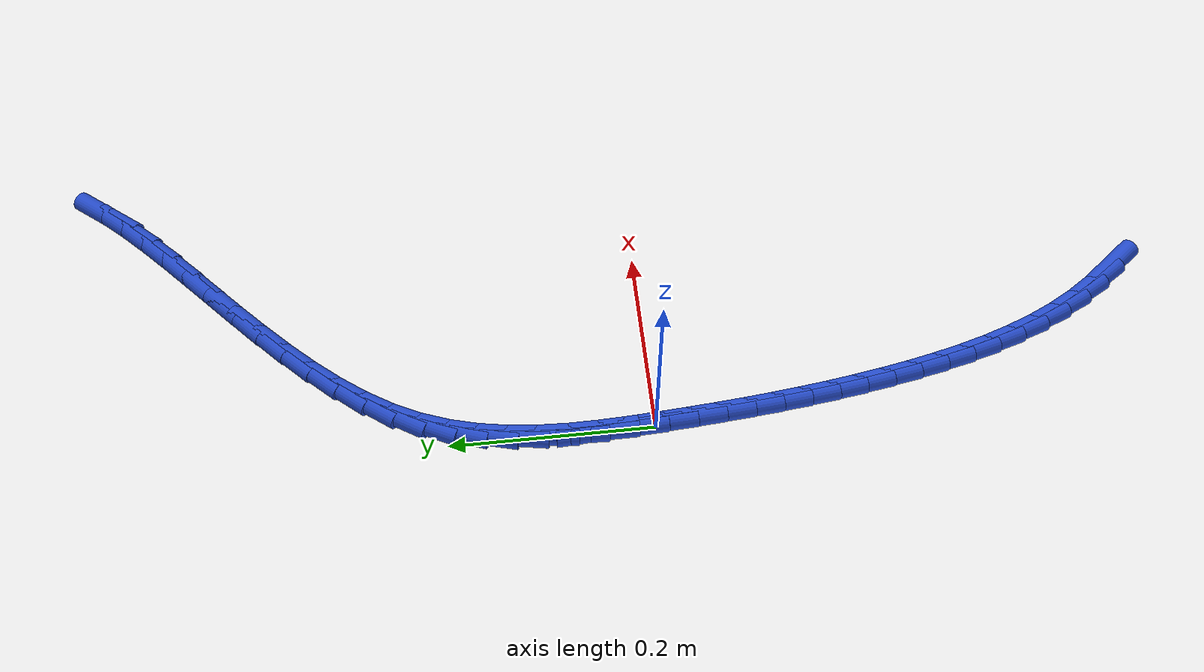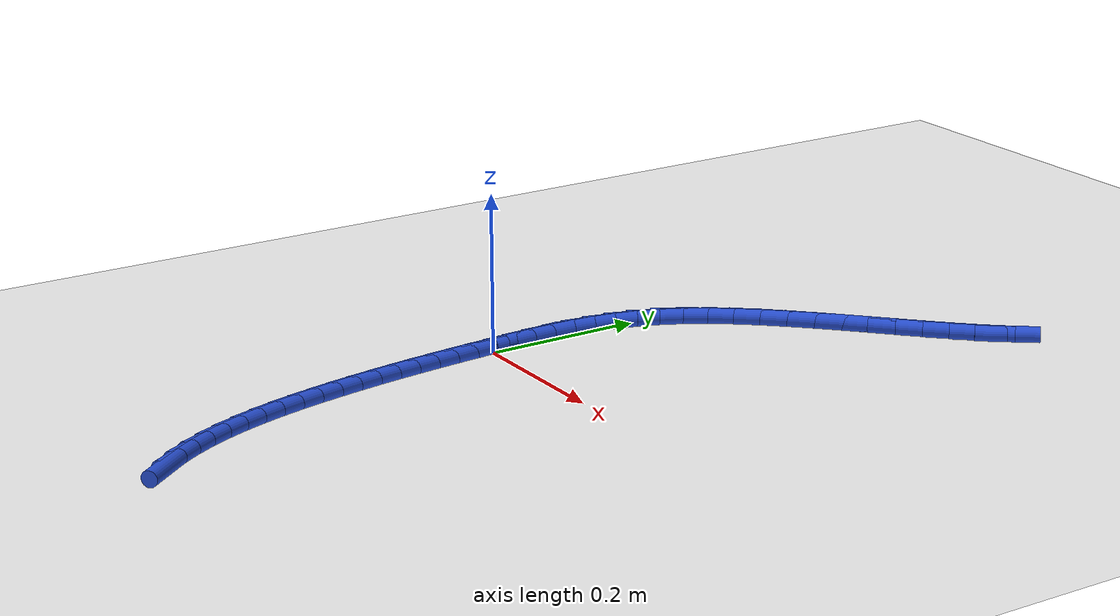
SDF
<sdf version="1.6">
 <world name="default">
  <model name="ground_plane">
   <static>1</static>
   <link name="link">
    <collision name="collision">
     <geometry><plane><normal>0 0 1</normal><size>100 100</size></plane></geometry>
     <surface><friction><ode><mu>100</mu><mu2>50</mu2></ode></friction></surface>
    </collision>
    <visual name="visual">
     <cast_shadows>0</cast_shadows>
     <geometry><plane><normal>0 0 1</normal><size>100 100</size></plane></geometry>
     <material>
      <script><uri>file://media/materials/scripts/gazebo.material</uri><name>Gazebo/WhiteGlow</name></script>
     </material>
    </visual>
   </link>
  </model>
  <model name="line">
   <link name="link_0">
    <pose>-3.903127820947816e-18 -3.469446951953614e-17 0.01 0 1.57 -1.507361087501564</pose>
    <collision name="collision">
     <geometry><cylinder><radius>0.01</radius><length>0.08</length></cylinder></geometry>
    </collision>
    <visual name="visual">
     <material>
      <script><name>Gazebo/Blue</name><uri>file://media/materials/scripts/gazebo.material</uri></script>
     </material>
     <geometry><cylinder><radius>0.01</radius><length>0.08</length></cylinder></geometry>
    </visual>
   </link>
   <link name="link_1">
    <pose>-0.0018077059022607862 0.02845863777967326 0.01 0 1.57 -1.527354065004989</pose>
    <collision name="collision">
     <geometry><cylinder><radius>0.01</radius><length>0.08</length></cylinder></geometry>
    </collision>
    <visual name="visual">
     <material>
      <script><name>Gazebo/Blue</name><uri>file://media/materials/scripts/gazebo.material</uri></script>
     </material>
     <geometry><cylinder><radius>0.01</radius><length>0.08</length></cylinder></geometry>
    </visual>
   </link>
   <link name="link_2">
    <pose>-0.0030477444912490013 0.05698520063292673 0.01 0 1.57 -1.5605273810109488</pose>
    <collision name="collision">
     <geometry><cylinder><radius>0.01</radius><length>0.08</length></cylinder></geometry>
    </collision>
    <visual name="visual">
     <material>
      <script><name>Gazebo/Blue</name><uri>file://media/materials/scripts/gazebo.material</uri></script>
     </material>
     <geometry><cylinder><radius>0.01</radius><length>0.08</length></cylinder></geometry>
    </visual>
   </link>
   <link name="link_3">
    <pose>-0.003340647359984815 0.08550736631264412 0.01 0 1.57 1.5344725306758564</pose>
    <collision name="collision">
     <geometry><cylinder><radius>0.01</radius><length>0.08</length></cylinder></geometry>
    </collision>
    <visual name="visual">
     <material>
      <script><name>Gazebo/Blue</name><uri>file://media/materials/scripts/gazebo.material</uri></script>
     </material>
     <geometry><cylinder><radius>0.01</radius><length>0.08</length></cylinder></geometry>
    </visual>
   </link>
   <link name="link_4">
    <pose>-0.002306946101488388 0.11395281257170907 0.01 0 1.57 1.4742731124760284</pose>
    <collision name="collision">
     <geometry><cylinder><radius>0.01</radius><length>0.08</length></cylinder></geometry>
    </collision>
    <visual name="visual">
     <material>
      <script><name>Gazebo/Blue</name><uri>file://media/materials/scripts/gazebo.material</uri></script>
     </material>
     <geometry><cylinder><radius>0.01</radius><length>0.08</length></cylinder></geometry>
    </visual>
   </link>
   <link name="link_5">
    <pose>0.0004328276912201074 0.14224921716300548 0.01 0 1.57 1.4005872689753363</pose>
    <collision name="collision">
     <geometry><cylinder><radius>0.01</radius><length>0.08</length></cylinder></geometry>
    </collision>
    <visual name="visual">
     <material>
      <script><name>Gazebo/Blue</name><uri>file://media/materials/scripts/gazebo.material</uri></script>
     </material>
     <geometry><cylinder><radius>0.01</radius><length>0.08</length></cylinder></geometry>
    </visual>
   </link>
   <link name="link_6">
    <pose>0.005258142425120512 0.17032425783941693 0.01 0 1.57 1.3141648265684118</pose>
    <collision name="collision">
     <geometry><cylinder><radius>0.01</radius><length>0.08</length></cylinder></geometry>
    </collision>
    <visual name="visual">
     <material>
      <script><name>Gazebo/Blue</name><uri>file://media/materials/scripts/gazebo.material</uri></script>
     </material>
     <geometry><cylinder><radius>0.01</radius><length>0.08</length></cylinder></geometry>
    </visual>
   </link>
   <link name="link_7">
    <pose>0.012548466507192654 0.19810561235382723 0.01 0 1.57 1.216701219416777</pose>
    <collision name="collision">
     <geometry><cylinder><radius>0.01</radius><length>0.08</length></cylinder></geometry>
    </collision>
    <visual name="visual">
     <material>
      <script><name>Gazebo/Blue</name><uri>file://media/materials/scripts/gazebo.material</uri></script>
     </material>
     <geometry><cylinder><radius>0.01</radius><length>0.08</length></cylinder></geometry>
    </visual>
   </link>
   <link name="link_8">
    <pose>0.02268326834441637 0.22552095845912012 0.01 0 1.57 1.111532479688611</pose>
    <collision name="collision">
     <geometry><cylinder><radius>0.01</radius><length>0.08</length></cylinder></geometry>
    </collision>
    <visual name="visual">
     <material>
      <script><name>Gazebo/Blue</name><uri>file://media/materials/scripts/gazebo.material</uri></script>
     </material>
     <geometry><cylinder><radius>0.01</radius><length>0.08</length></cylinder></geometry>
    </visual>
   </link>
   <link name="link_9">
    <pose>0.03602519263277827 0.2524998346841306 0.01 0 1.57 1.0139699110341625</pose>
    <collision name="collision">
     <geometry><cylinder><radius>0.01</radius><length>0.08</length></cylinder></geometry>
    </collision>
    <visual name="visual">
     <material>
      <script><name>Gazebo/Blue</name><uri>file://media/materials/scripts/gazebo.material</uri></script>
     </material>
     <geometry><cylinder><radius>0.01</radius><length>0.08</length></cylinder></geometry>
    </visual>
   </link>
   <link name="link_10">
    <pose>0.052532789469285676 0.27901647418613623 0.01 0 1.57 0.935639406556752</pose>
    <collision name="collision">
     <geometry><cylinder><radius>0.01</radius><length>0.08</length></cylinder></geometry>
    </collision>
    <visual name="visual">
     <material>
      <script><name>Gazebo/Blue</name><uri>file://media/materials/scripts/gazebo.material</uri></script>
     </material>
     <geometry><cylinder><radius>0.01</radius><length>0.08</length></cylinder></geometry>
    </visual>
   </link>
   <link name="link_11">
    <pose>0.07175075094101534 0.3050908846267712 0.01 0 1.57 0.8743194416370703</pose>
    <collision name="collision">
     <geometry><cylinder><radius>0.01</radius><length>0.08</length></cylinder></geometry>
    </collision>
    <visual name="visual">
     <material>
      <script><name>Gazebo/Blue</name><uri>file://media/materials/scripts/gazebo.material</uri></script>
     </material>
     <geometry><cylinder><radius>0.01</radius><length>0.08</length></cylinder></geometry>
    </visual>
   </link>
   <link name="link_12">
    <pose>0.09320499239296157 0.3307451504573942 0.01 0 1.57 0.827454178183127</pose>
    <collision name="collision">
     <geometry><cylinder><radius>0.01</radius><length>0.08</length></cylinder></geometry>
    </collision>
    <visual name="visual">
     <material>
      <script><name>Gazebo/Blue</name><uri>file://media/materials/scripts/gazebo.material</uri></script>
     </material>
     <geometry><cylinder><radius>0.01</radius><length>0.08</length></cylinder></geometry>
    </visual>
   </link>
   <link name="link_13">
    <pose>0.11642142917011872 0.3560013561293638 0.01 0 1.57 0.7930052700869376</pose>
    <collision name="collision">
     <geometry><cylinder><radius>0.01</radius><length>0.08</length></cylinder></geometry>
    </collision>
    <visual name="visual">
     <material>
      <script><name>Gazebo/Blue</name><uri>file://media/materials/scripts/gazebo.material</uri></script>
     </material>
     <geometry><cylinder><radius>0.01</radius><length>0.08</length></cylinder></geometry>
    </visual>
   </link>
   <link name="link_14">
    <pose>0.14092597661748107 0.3808815860940385 0.01 0 1.57 0.7695055071918945</pose>
    <collision name="collision">
     <geometry><cylinder><radius>0.01</radius><length>0.08</length></cylinder></geometry>
    </collision>
    <visual name="visual">
     <material>
      <script><name>Gazebo/Blue</name><uri>file://media/materials/scripts/gazebo.material</uri></script>
     </material>
     <geometry><cylinder><radius>0.01</radius><length>0.08</length></cylinder></geometry>
    </visual>
   </link>
   <link name="link_15">
    <pose>0.166244550080043 0.4054079248027767 0.01 0 1.57 0.7560406335067316</pose>
    <collision name="collision">
     <geometry><cylinder><radius>0.01</radius><length>0.08</length></cylinder></geometry>
    </collision>
    <visual name="visual">
     <material>
      <script><name>Gazebo/Blue</name><uri>file://media/materials/scripts/gazebo.material</uri></script>
     </material>
     <geometry><cylinder><radius>0.01</radius><length>0.08</length></cylinder></geometry>
    </visual>
   </link>
   <link name="link_16">
    <pose>0.19190306490279888 0.4296024567069374 0.01 0 1.57 0.7522269886127216</pose>
    <collision name="collision">
     <geometry><cylinder><radius>0.01</radius><length>0.08</length></cylinder></geometry>
    </collision>
    <visual name="visual">
     <material>
      <script><name>Gazebo/Blue</name><uri>file://media/materials/scripts/gazebo.material</uri></script>
     </material>
     <geometry><cylinder><radius>0.01</radius><length>0.08</length></cylinder></geometry>
    </visual>
   </link>
   <link name="link_17">
    <pose>0.21742743643074294 0.4534872662578789 0.01 0 1.57 0.7582170259758442</pose>
    <collision name="collision">
     <geometry><cylinder><radius>0.01</radius><length>0.08</length></cylinder></geometry>
    </collision>
    <visual name="visual">
     <material>
      <script><name>Gazebo/Blue</name><uri>file://media/materials/scripts/gazebo.material</uri></script>
     </material>
     <geometry><cylinder><radius>0.01</radius><length>0.08</length></cylinder></geometry>
    </visual>
   </link>
   <link name="link_18">
    <pose>0.24234358000886963 0.4770844379069597 0.01 0 1.57 0.774750670265783</pose>
    <collision name="collision">
     <geometry><cylinder><radius>0.01</radius><length>0.08</length></cylinder></geometry>
    </collision>
    <visual name="visual">
     <material>
      <script><name>Gazebo/Blue</name><uri>file://media/materials/scripts/gazebo.material</uri></script>
     </material>
     <geometry><cylinder><radius>0.01</radius><length>0.08</length></cylinder></geometry>
    </visual>
   </link>
   <link name="link_19">
    <pose>0.2661774109821732 0.5004160561055385 0.01 0 1.57 0.8032669781772184</pose>
    <collision name="collision">
     <geometry><cylinder><radius>0.01</radius><length>0.08</length></cylinder></geometry>
    </collision>
    <visual name="visual">
     <material>
      <script><name>Gazebo/Blue</name><uri>file://media/materials/scripts/gazebo.material</uri></script>
     </material>
     <geometry><cylinder><radius>0.01</radius><length>0.08</length></cylinder></geometry>
    </visual>
   </link>
   <link name="link_20">
    <pose>0.28845484469564797 0.5235042053049737 0.01 0 1.57 0.8460887213256204</pose>
    <collision name="collision">
     <geometry><cylinder><radius>0.01</radius><length>0.08</length></cylinder></geometry>
    </collision>
    <visual name="visual">
     <material>
      <script><name>Gazebo/Blue</name><uri>file://media/materials/scripts/gazebo.material</uri></script>
     </material>
     <geometry><cylinder><radius>0.01</radius><length>0.08</length></cylinder></geometry>
    </visual>
   </link>
   <link name="link_21">
    <pose>0.3087017964942883 0.546370969956624 0.01 0 1.57 0.9066782034397395</pose>
    <collision name="collision">
     <geometry><cylinder><radius>0.01</radius><length>0.08</length></cylinder></geometry>
    </collision>
    <visual name="visual">
     <material>
      <script><name>Gazebo/Blue</name><uri>file://media/materials/scripts/gazebo.material</uri></script>
     </material>
     <geometry><cylinder><radius>0.01</radius><length>0.08</length></cylinder></geometry>
    </visual>
   </link>
   <link name="link_242">
    <pose>0.13147447700313117 -0.4864563629571482 0.01 0 1.57 -0.909702425857526</pose>
    <collision name="collision">
     <geometry><cylinder><radius>0.01</radius><length>0.08</length></cylinder></geometry>
    </collision>
    <visual name="visual">
     <material>
      <script><name>Gazebo/Blue</name><uri>file://media/materials/scripts/gazebo.material</uri></script>
     </material>
     <geometry><cylinder><radius>0.01</radius><length>0.08</length></cylinder></geometry>
    </visual>
   </link>
   <link name="link_243">
    <pose>0.11424480651686696 -0.46430624835677653 0.01 0 1.57 -0.9894497726955476</pose>
    <collision name="collision">
     <geometry><cylinder><radius>0.01</radius><length>0.08</length></cylinder></geometry>
    </collision>
    <visual name="visual">
     <material>
      <script><name>Gazebo/Blue</name><uri>file://media/materials/scripts/gazebo.material</uri></script>
     </material>
     <geometry><cylinder><radius>0.01</radius><length>0.08</length></cylinder></geometry>
    </visual>
   </link>
   <link name="link_244">
    <pose>0.09884283212906014 -0.44086674374940904 0.01 0 1.57 -1.0646502615754292</pose>
    <collision name="collision">
     <geometry><cylinder><radius>0.01</radius><length>0.08</length></cylinder></geometry>
    </collision>
    <visual name="visual">
     <material>
      <script><name>Gazebo/Blue</name><uri>file://media/materials/scripts/gazebo.material</uri></script>
     </material>
     <geometry><cylinder><radius>0.01</radius><length>0.08</length></cylinder></geometry>
    </visual>
   </link>
   <link name="link_245">
    <pose>0.08519427285204975 -0.4162441248273466 0.01 0 1.57 -1.131630023376088</pose>
    <collision name="collision">
     <geometry><cylinder><radius>0.01</radius><length>0.08</length></cylinder></geometry>
    </collision>
    <visual name="visual">
     <material>
      <script><name>Gazebo/Blue</name><uri>file://media/materials/scripts/gazebo.material</uri></script>
     </material>
     <geometry><cylinder><radius>0.01</radius><length>0.08</length></cylinder></geometry>
    </visual>
   </link>
   <link name="link_246">
    <pose>0.0731512860458323 -0.39060779162000486 0.01 0 1.57 -1.1905179186445056</pose>
    <collision name="collision">
     <geometry><cylinder><radius>0.01</radius><length>0.08</length></cylinder></geometry>
    </collision>
    <visual name="visual">
     <material>
      <script><name>Gazebo/Blue</name><uri>file://media/materials/scripts/gazebo.material</uri></script>
     </material>
     <geometry><cylinder><radius>0.01</radius><length>0.08</length></cylinder></geometry>
    </visual>
   </link>
   <link name="link_247">
    <pose>0.06256602907040311 -0.36412714415679726 0.01 0 1.57 -1.2416563049633265</pose>
    <collision name="collision">
     <geometry><cylinder><radius>0.01</radius><length>0.08</length></cylinder></geometry>
    </collision>
    <visual name="visual">
     <material>
      <script><name>Gazebo/Blue</name><uri>file://media/materials/scripts/gazebo.material</uri></script>
     </material>
     <geometry><cylinder><radius>0.01</radius><length>0.08</length></cylinder></geometry>
    </visual>
   </link>
   <link name="link_248">
    <pose>0.05329065928575794 -0.3369715824671382 0.01 0 1.57 -1.285486558417548</pose>
    <collision name="collision">
     <geometry><cylinder><radius>0.01</radius><length>0.08</length></cylinder></geometry>
    </collision>
    <visual name="visual">
     <material>
      <script><name>Gazebo/Blue</name><uri>file://media/materials/scripts/gazebo.material</uri></script>
     </material>
     <geometry><cylinder><radius>0.01</radius><length>0.08</length></cylinder></geometry>
    </visual>
   </link>
   <link name="link_249">
    <pose>0.045177334051892545 -0.30931050658044207 0.01 0 1.57 -1.32246466309598</pose>
    <collision name="collision">
     <geometry><cylinder><radius>0.01</radius><length>0.08</length></cylinder></geometry>
    </collision>
    <visual name="visual">
     <material>
      <script><name>Gazebo/Blue</name><uri>file://media/materials/scripts/gazebo.material</uri></script>
     </material>
     <geometry><cylinder><radius>0.01</radius><length>0.08</length></cylinder></geometry>
    </visual>
   </link>
   <link name="link_250">
    <pose>0.03807821072880266 -0.2813133165261229 0.01 0 1.57 -1.353003259959193</pose>
    <collision name="collision">
     <geometry><cylinder><radius>0.01</radius><length>0.08</length></cylinder></geometry>
    </collision>
    <visual name="visual">
     <material>
      <script><name>Gazebo/Blue</name><uri>file://media/materials/scripts/gazebo.material</uri></script>
     </material>
     <geometry><cylinder><radius>0.01</radius><length>0.08</length></cylinder></geometry>
    </visual>
   </link>
   <link name="link_251">
    <pose>0.03184544667648404 -0.2531494123335952 0.01 0 1.57 -1.377532473495088</pose>
    <collision name="collision">
     <geometry><cylinder><radius>0.01</radius><length>0.08</length></cylinder></geometry>
    </collision>
    <visual name="visual">
     <material>
      <script><name>Gazebo/Blue</name><uri>file://media/materials/scripts/gazebo.material</uri></script>
     </material>
     <geometry><cylinder><radius>0.01</radius><length>0.08</length></cylinder></geometry>
    </visual>
   </link>
   <link name="link_252">
    <pose>0.026333268147062702 -0.2249838830322627 0.01 0 1.57 -1.3984218399991846</pose>
    <collision name="collision">
     <geometry><cylinder><radius>0.01</radius><length>0.08</length></cylinder></geometry>
    </collision>
    <visual name="visual">
     <material>
      <script><name>Gazebo/Blue</name><uri>file://media/materials/scripts/gazebo.material</uri></script>
     </material>
     <geometry><cylinder><radius>0.01</radius><length>0.08</length></cylinder></geometry>
    </visual>
   </link>
   <link name="link_253">
    <pose>0.021441501826227904 -0.1968867989375847 0.01 0 1.57 -1.4177496343501845</pose>
    <collision name="collision">
     <geometry><cylinder><radius>0.01</radius><length>0.08</length></cylinder></geometry>
    </collision>
    <visual name="visual">
     <material>
      <script><name>Gazebo/Blue</name><uri>file://media/materials/scripts/gazebo.material</uri></script>
     </material>
     <geometry><cylinder><radius>0.01</radius><length>0.08</length></cylinder></geometry>
    </visual>
   </link>
   <link name="link_254">
    <pose>0.017114499063856793 -0.16883545325744334 0.01 0 1.57 -1.435497502728938</pose>
    <collision name="collision">
     <geometry><cylinder><radius>0.01</radius><length>0.08</length></cylinder></geometry>
    </collision>
    <visual name="visual">
     <material>
      <script><name>Gazebo/Blue</name><uri>file://media/materials/scripts/gazebo.material</uri></script>
     </material>
     <geometry><cylinder><radius>0.01</radius><length>0.08</length></cylinder></geometry>
    </visual>
   </link>
   <link name="link_255">
    <pose>0.01329846490963924 -0.14080327660109104 0.01 0 1.57 -1.4515744401470405</pose>
    <collision name="collision">
     <geometry><cylinder><radius>0.01</radius><length>0.08</length></cylinder></geometry>
    </collision>
    <visual name="visual">
     <material>
      <script><name>Gazebo/Blue</name><uri>file://media/materials/scripts/gazebo.material</uri></script>
     </material>
     <geometry><cylinder><radius>0.01</radius><length>0.08</length></cylinder></geometry>
    </visual>
   </link>
   <link name="link_256">
    <pose>0.009939604413265097 -0.11276369957778015 0.01 0 1.57 -1.4659062964336684</pose>
    <collision name="collision">
     <geometry><cylinder><radius>0.01</radius><length>0.08</length></cylinder></geometry>
    </collision>
    <visual name="visual">
     <material>
      <script><name>Gazebo/Blue</name><uri>file://media/materials/scripts/gazebo.material</uri></script>
     </material>
     <geometry><cylinder><radius>0.01</radius><length>0.08</length></cylinder></geometry>
    </visual>
   </link>
   <link name="link_257">
    <pose>0.006984122624424244 -0.08469015279676322 0.01 0 1.57 -1.478435624186945</pose>
    <collision name="collision">
     <geometry><cylinder><radius>0.01</radius><length>0.08</length></cylinder></geometry>
    </collision>
    <visual name="visual">
     <material>
      <script><name>Gazebo/Blue</name><uri>file://media/materials/scripts/gazebo.material</uri></script>
     </material>
     <geometry><cylinder><radius>0.01</radius><length>0.08</length></cylinder></geometry>
    </visual>
   </link>
   <link name="link_258">
    <pose>0.00437822459280653 -0.05655606686729259 0.01 0 1.57 -1.4891211815455405</pose>
    <collision name="collision">
     <geometry><cylinder><radius>0.01</radius><length>0.08</length></cylinder></geometry>
    </collision>
    <visual name="visual">
     <material>
      <script><name>Gazebo/Blue</name><uri>file://media/materials/scripts/gazebo.material</uri></script>
     </material>
     <geometry><cylinder><radius>0.01</radius><length>0.08</length></cylinder></geometry>
    </visual>
   </link>
   <link name="link_259">
    <pose>0.0020681153681018243 -0.02833487239862067 0.01 0 1.57 -1.4979371819150196</pose>
    <collision name="collision">
     <geometry><cylinder><radius>0.01</radius><length>0.08</length></cylinder></geometry>
    </collision>
    <visual name="visual">
     <material>
      <script><name>Gazebo/Blue</name><uri>file://media/materials/scripts/gazebo.material</uri></script>
     </material>
     <geometry><cylinder><radius>0.01</radius><length>0.08</length></cylinder></geometry>
    </visual>
   </link>
   <link name="link_260">
    <pose>-1.3010426069826053e-17 7.632783294297951e-17 0.01 0 1.57 -1.504872378473179</pose>
    <collision name="collision">
     <geometry><cylinder><radius>0.01</radius><length>0.08</length></cylinder></geometry>
    </collision>
    <visual name="visual">
     <material>
      <script><name>Gazebo/Blue</name><uri>file://media/materials/scripts/gazebo.material</uri></script>
     </material>
     <geometry><cylinder><radius>0.01</radius><length>0.08</length></cylinder></geometry>
    </visual>
   </link>
   <link name="link_261">
    <pose>-0.001879916461809118 0.028475119719317262 0.01 0 1.57 -1.509929060649984</pose>
    <collision name="collision">
     <geometry><cylinder><radius>0.01</radius><length>0.08</length></cylinder></geometry>
    </collision>
    <visual name="visual">
     <material>
      <script><name>Gazebo/Blue</name><uri>file://media/materials/scripts/gazebo.material</uri></script>
     </material>
     <geometry><cylinder><radius>0.01</radius><length>0.08</length></cylinder></geometry>
    </visual>
   </link>
   <link name="link_262">
    <pose>-0.003625428967635627 0.057117056150078435 0.01 0 1.57 -1.5074076980792972</pose>
    <collision name="collision">
     <geometry><cylinder><radius>0.01</radius><length>0.08</length></cylinder></geometry>
    </collision>
    <visual name="visual">
     <material>
      <script><name>Gazebo/Blue</name><uri>file://media/materials/scripts/gazebo.material</uri></script>
     </material>
     <geometry><cylinder><radius>0.01</radius><length>0.08</length></cylinder></geometry>
    </visual>
   </link>
  </model>
 </world>
</sdf>
